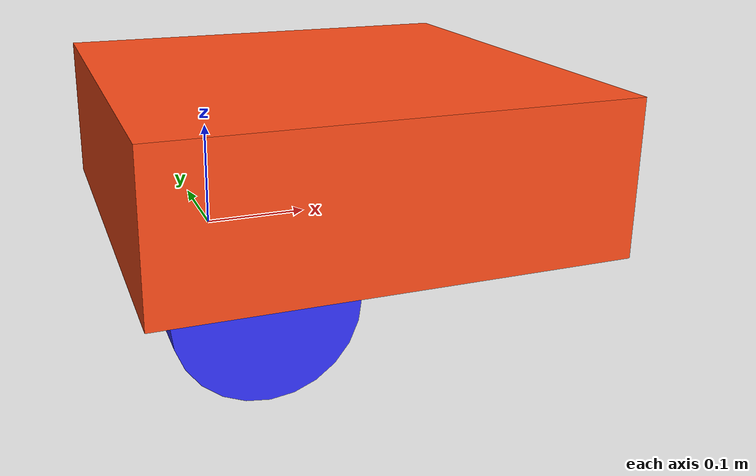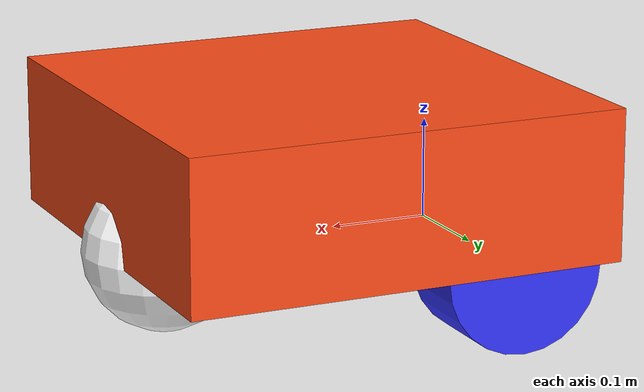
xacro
<?xml version="1.0"?>
<robot xmlns:xacro="http://www.ros.org/wiki/xacro" >

    <xacro:include filename="inertial_macros.xacro"/>

    <xacro:property name="chassis_length" value="0.444"/>
    <xacro:property name="chassis_width" value="0.444"/>
    <xacro:property name="chassis_height" value="0.152"/>
    <xacro:property name="chassis_mass" value="1.0"/> <!-- this is have not changed -->
    <xacro:property name="wheel_radius" value="0.076"/>
    <xacro:property name="wheel_thickness" value="0.076"/>
    <xacro:property name="wheel_mass" value="0.05"/> <!-- this i have not changed-->
    <xacro:property name="wheel_offset_x" value="0.226"/>
    <xacro:property name="wheel_offset_y" value="0.1485"/>
    <xacro:property name="wheel_offset_z" value="0.01"/>

    <xacro:property name="caster_wheel_radius" value="0.08"/>
    <xacro:property name="caster_wheel_mass" value="0.01"/>
    <xacro:property name="caster_wheel_offset_x" value="0.075"/>
    <xacro:property name="caster_wheel_offset_z" value="${wheel_offset_z - wheel_radius + caster_wheel_radius}"/>

    <!-- here it is defined as the appearence of the robot in the simulation-->
    <material name="white">
        <color rgba="1 1 1 1" />
    </material>

    <material name="orange">
        <color rgba="1 0.3 0.1 1"/>
    </material>

    <material name="blue">
        <color rgba="0.2 0.2 1 1"/>
    </material>

    <material name="black">
        <color rgba="0 0 0 1"/>
    </material>

    <material name="red">
        <color rgba="1 0 0 1"/>
    </material>

    <!-- BASE LINK -->

    <link name="base_link">

    </link>

    <!-- BASE_FOOTPRINT LINK -->

    <joint name="base_footprint_joint" type="fixed">
        <parent link="base_link"/>
        <child link="base_footprint"/>
        <origin xyz="0 0 0" rpy="0 0 0"/>
    </joint>

    <link name="base_footprint">
    </link>

    <!-- CHASSIS LINK -->

    <joint name="chassis_joint" type="fixed">
        <parent link="base_link"/>
        <child link="chassis"/>
        <!-- here the origin is set just behind the mid of chessi-->
        <origin xyz="-0.1 0  0"/>
    </joint>
<!-- here i have to make the changes -->
    <link name="chassis">
        <visual>
            <origin xyz="0.22 0 0.075"/>
            <geometry>
                <box size="0.44 0.44 0.15"/>
            </geometry>
            <material name="orange"/>
        </visual>
        <collision>
            <origin xyz="0.22 0 0.075"/>
            <geometry>
                <box size="0.44 0.44 0.15"/>
            </geometry>
        </collision>
            <xacro:inertial_box mass="0.5" x="0.44" y="0.44" z="0.15">
                <origin xyz="0.22 0 0.075" rpy="0 0 0"/>
        </xacro:inertial_box>
    </link>

    <gazebo reference="chassis">
        <material>Gazebo/Orange</material>
    </gazebo>

    <!-- LEFT WHEEL LINK -->

    <joint name="left_wheel_joint" type="continuous">
        <parent link="base_link"/>
        <child link="left_wheel"/>
        <origin xyz="0 0.175 0" rpy="-${pi/2} 0 0" /> <!-- changes the y that robot wheel is pointing to y-->
        <axis xyz="0 0 1"/>
    </joint>

    <link name="left_wheel">
        <visual>
            <geometry>
                <!--previous  -->
                <cylinder radius="0.08" length="0.08"/><!-- new -->

            </geometry>
            <material name="blue"/>
        </visual>
        <collision>
            <geometry>
                <sphere radius="0.08"/>
            </geometry>
        </collision>
        <xacro:inertial_cylinder mass="0.1" length="0.08" radius="0.08">
        <origin xyz="0 0 0" rpy="0 0 0"/>
        </xacro:inertial_cylinder>
    </link>

    <gazebo reference="left_wheel">
        <material>Gazebo/Blue</material>
    </gazebo>

    <!-- RIGHT WHEEL LINK -->

    <joint name="right_wheel_joint" type="continuous">
        <parent link="base_link"/>
        <child link="right_wheel"/>
        <origin xyz="0 -0.175 0" rpy="${pi/2} 0 0" />
        <axis xyz="0 0 -1"/>
    </joint>

    <link name="right_wheel">
        <visual>
            <geometry>
                <!--previous  -->
                <cylinder radius="0.08" length="0.08"/><!-- new -->
            </geometry>
            <material name="blue"/>
        </visual>
        <collision>
            <geometry>
                <sphere radius="0.08"/>
            </geometry>
        </collision>
        <xacro:inertial_cylinder mass="0.1" length="0.08" radius="0.08">
        <origin xyz="0 0 0" rpy="0 0 0"/>
        </xacro:inertial_cylinder>
    </link>

    <gazebo reference="right_wheel">
        <material>Gazebo/Blue</material>
    </gazebo>

    <!-- CASTER WHEEL LINK -->

    <joint name="caster_wheel_joint" type="fixed">
        <parent link="chassis"/>
        <child link="caster_wheel"/>
        <origin xyz="0.38 0 0"/><!-- new -->
    </joint>

    <link name="caster_wheel">
        <visual>
            <geometry>
                <sphere radius="0.08"/>
            </geometry>
            <material name="white"/>
        </visual>
        <collision>
            <geometry>
                <sphere radius="0.08"/>
            </geometry>
        </collision>
            <xacro:inertial_sphere mass="0.01" radius="0.08">
            <origin xyz="0 0 0" rpy="0 0 0"/>
        </xacro:inertial_sphere>
    </link>

    <gazebo reference="caster_wheel">
        <material>Gazebo/White</material>
        <mu1 value="0.001"/>
        <mu2 value="0.001"/>
    </gazebo>

</robot>
